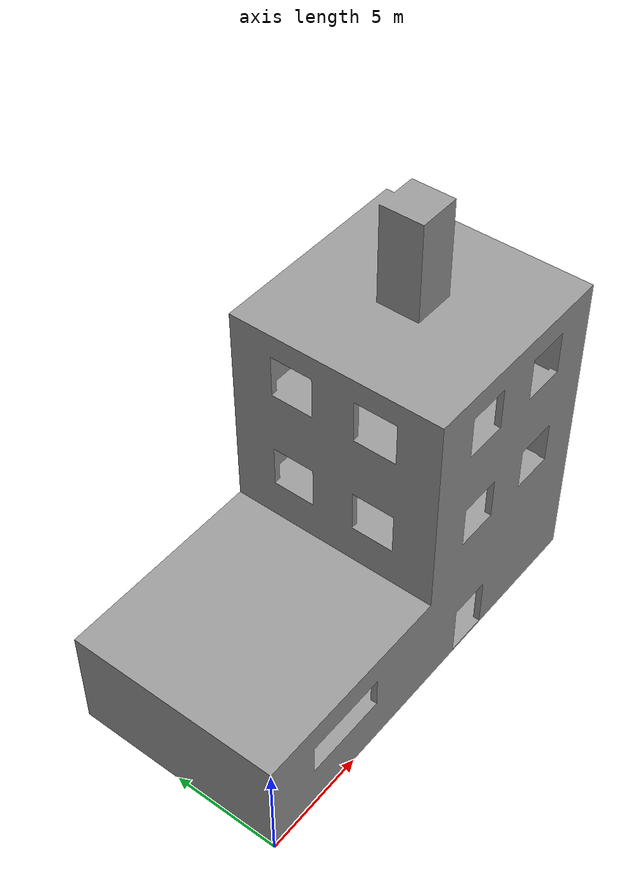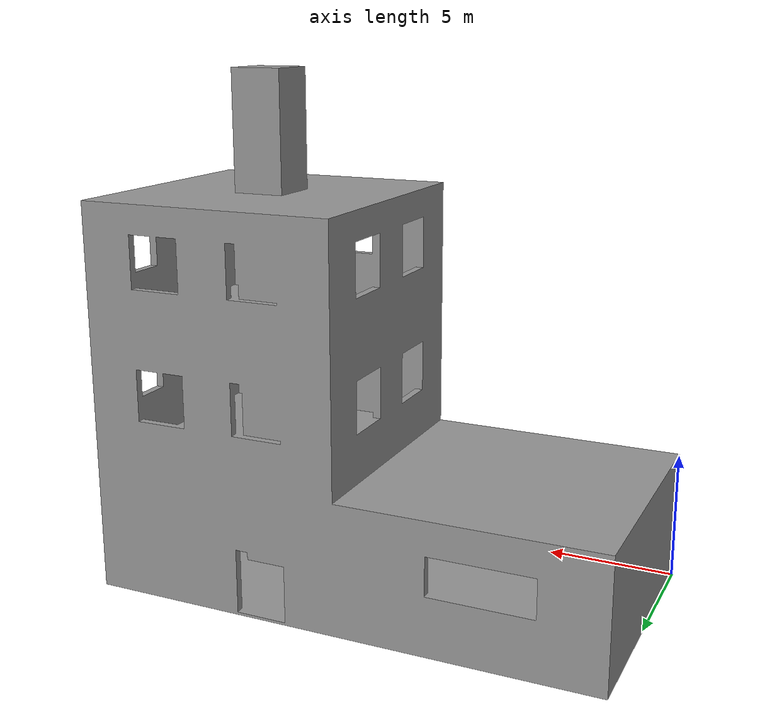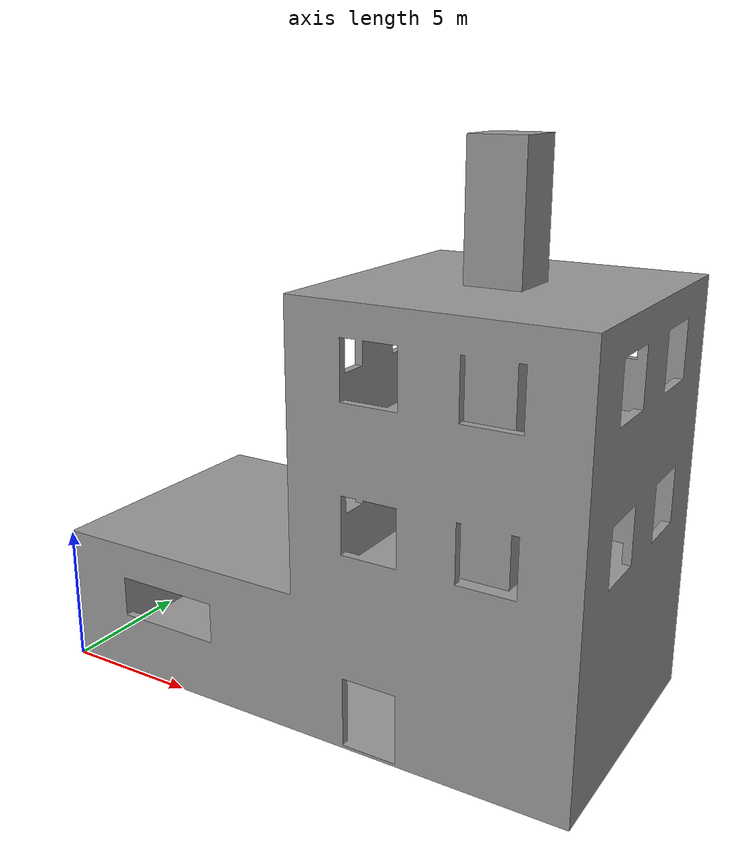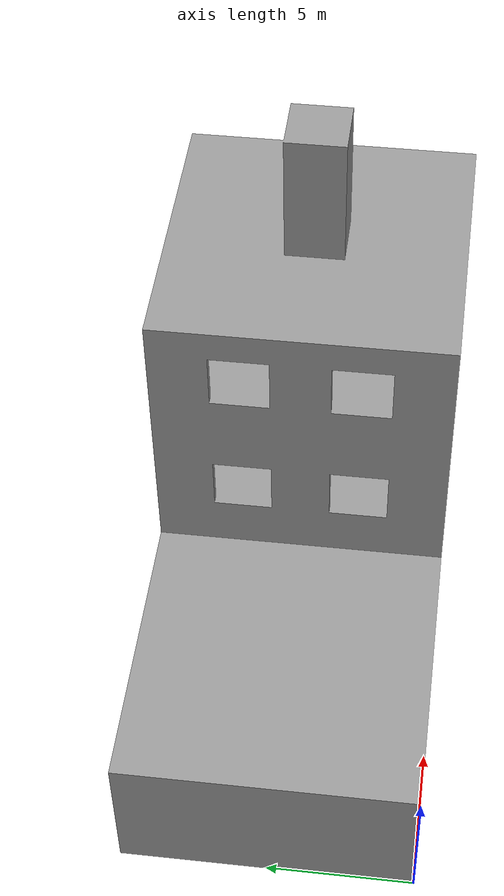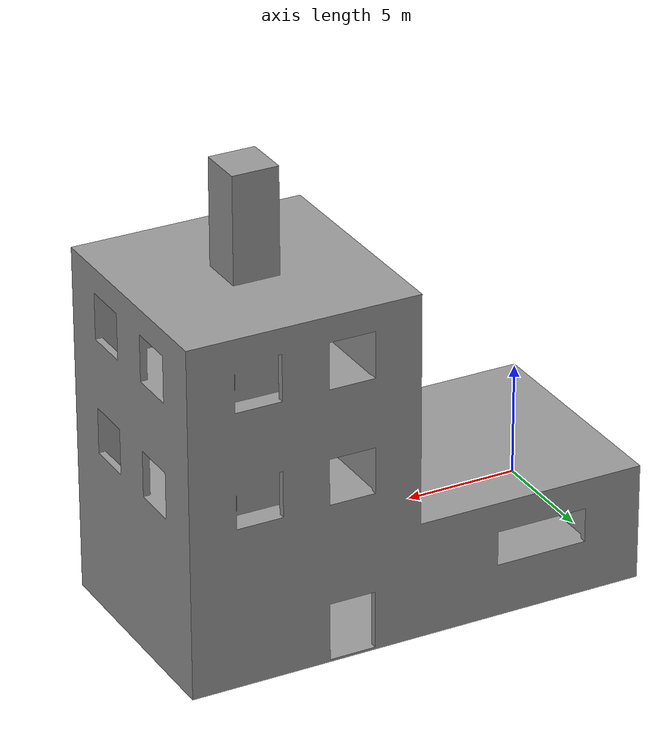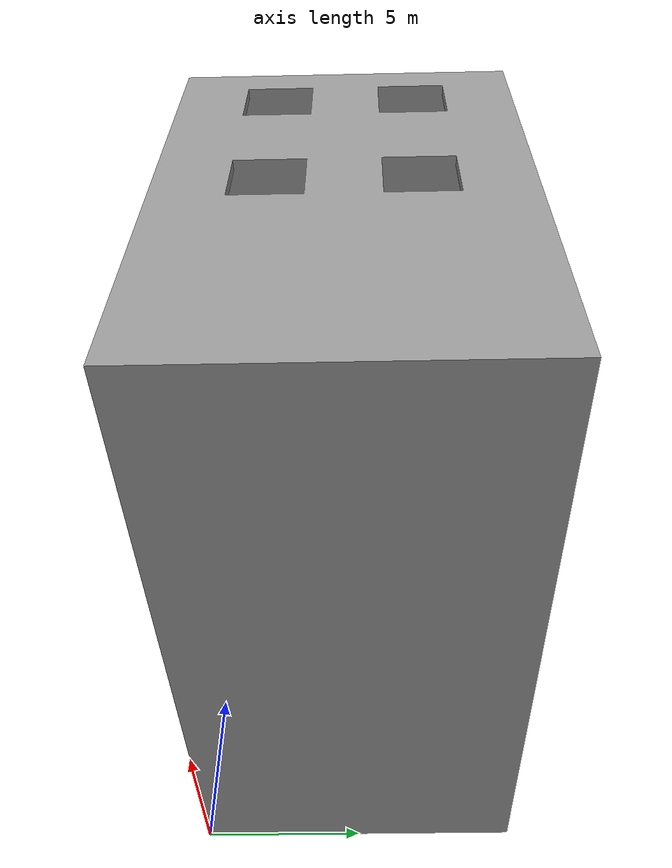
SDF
<?xml version="1.0" ?>
<sdf version="1.5">
  <model name="mbzirc_building">
    <static>true</static>
	<link name='chassis1'>
		<collision name='collision1'>
			<geometry>
				<mesh>
				<scale>0.1 0.1 0.1</scale>
				<uri>model://mbzirc_building/CH3_building.stl</uri></mesh>
			</geometry>
		</collision>

		<visual name='visual1'>
			<geometry>
				<mesh>
				<scale>0.1 0.1 0.1</scale>
				<uri>model://mbzirc_building/CH3_building.stl</uri></mesh>
			</geometry>
		    <material>
		      <script>
		        <name>Gazebo/Grey</name>
		        <uri>file://media/materials/scripts/gazebo.material</uri>
		      </script>
		    </material>
		</visual>
	</link>
  </model>
</sdf>
